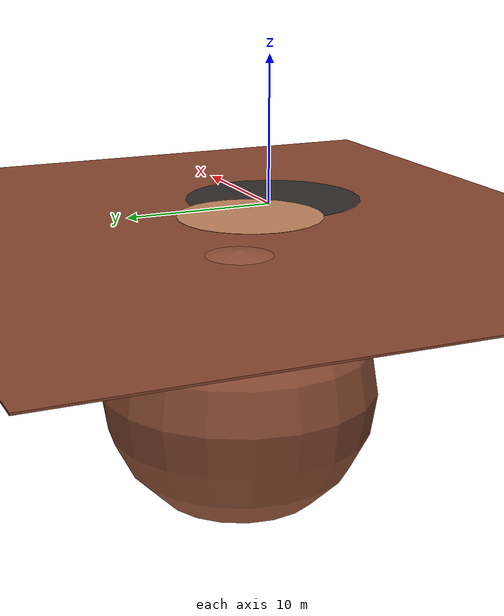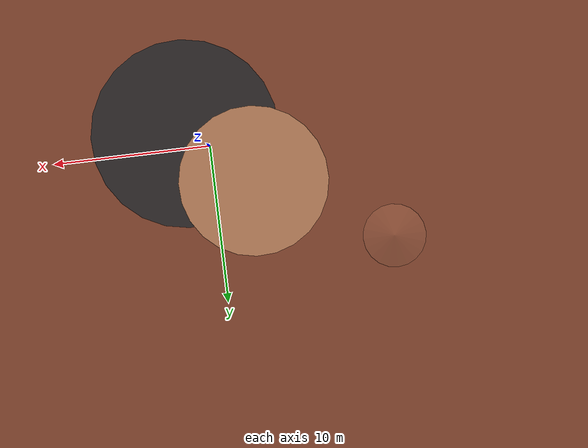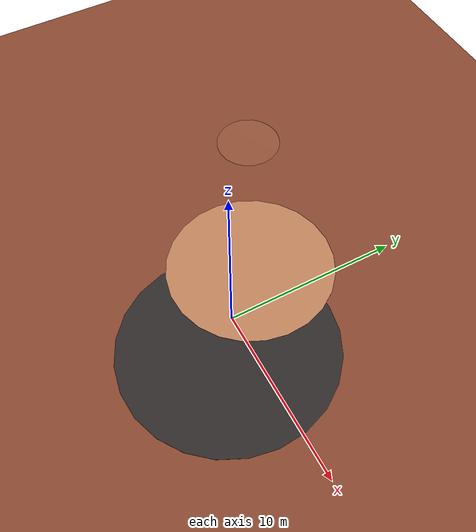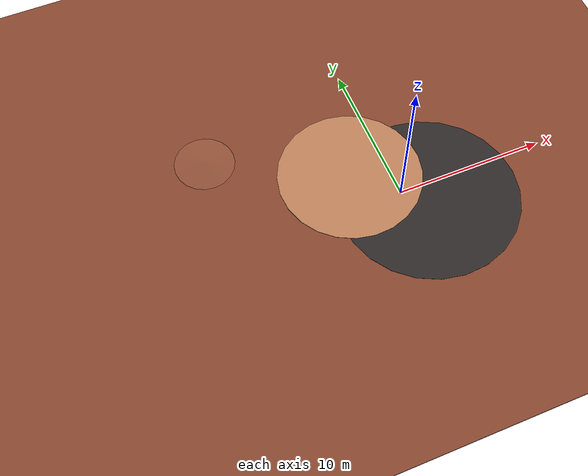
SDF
<sdf version="1.6">

  <!-- Define the simulation world -->
  <world name="mars_world">

    <!-- Mars gravity (downward along Z-axis) -->
    <gravity>0 0 -3.72</gravity>

    <!-- Add default sun light source -->
    <include>
      <uri>model://sun</uri>
    </include>

    <!-- ================= SCENE SETTINGS ================= -->
    <scene>

      <!-- Ambient lighting (reddish Mars tone) -->
      <ambient>0.26 0.15 0.12 1</ambient>

      <!-- Background color -->
      <background>0.18 0.11 0.09 1</background>

      <!-- Enable shadows -->
      <shadows>true</shadows>

      <!-- Fog to simulate dust atmosphere -->
      <fog>
        <type>linear</type>
        <color>0.30 0.18 0.14 1</color>
        <start>6.0</start>
        <end>42.0</end>
        <density>0.01</density>
      </fog>

      <!-- Disable clouds -->
      <sky>
        <clouds>false</clouds>
      </sky>
    </scene>

    <!-- ================= PHYSICS ENGINE ================= -->
    <physics name="mars_physics" type="ode">

      <!-- Run simulation in real-time -->
      <real_time_factor>1.0</real_time_factor>

      <!-- Small step size for accuracy -->
      <max_step_size>0.001</max_step_size>

      <!-- Update frequency -->
      <real_time_update_rate>1000</real_time_update_rate>
    </physics>

    <!-- ================= BASE TERRAIN ================= -->
    <model name="mars_terrain_base">

      <!-- Static = does not move -->
      <static>true</static>

      <!-- Slightly below origin -->
      <pose>0 0 -0.08 0 0 0</pose>

      <link name="terrain_link">

        <!-- Collision shape (physics) -->
        <collision name="collision">
          <geometry>
            <box>
              <!-- 90m x 90m ground -->
              <size>90 90 0.12</size>
            </box>
          </geometry>

          <!-- Friction properties -->
          <surface>
            <friction>
              <ode>
                <mu>1.2</mu>
                <mu2>1.2</mu2>
              </ode>
            </friction>
          </surface>
        </collision>

        <!-- Visual appearance -->
        <visual name="visual">
          <geometry>
            <box>
              <size>90 90 0.12</size>
            </box>
          </geometry>

          <!-- Mars-like brown color -->
          <material>
            <ambient>0.34 0.18 0.12 1</ambient>
            <diffuse>0.52 0.27 0.18 1</diffuse>
          </material>
        </visual>

      </link>
    </model>

    <!-- ================= DUNE MOUNDS ================= -->

    <!-- Large spherical terrain bumps (hills) -->
    <model name="dune_mound_01">
      <static>true</static>
      <pose>-11 7 -7.9 0 0 0</pose>

      <link name="link">
        <!-- Sphere used to create curved hill -->
        <collision name="c">
          <geometry><sphere><radius>8.2</radius></sphere></geometry>
        </collision>

        <visual name="v">
          <geometry><sphere><radius>8.2</radius></sphere></geometry>
          <material><diffuse>0.56 0.31 0.21 1</diffuse></material>
        </visual>
      </link>
    </model>

    <!-- ================= LIGHTING ================= -->

    <!-- Main sunlight -->
    <light name="mars_key" type="directional">
      <cast_shadows>true</cast_shadows>

      <!-- Position and angle -->
      <pose>0 0 60 0.35 -0.1 0.0</pose>

      <!-- Color -->
      <diffuse>0.80 0.46 0.33 1</diffuse>

      <!-- Light direction -->
      <direction>-0.55 0.20 -0.82</direction>
    </light>

    <!-- Secondary soft light -->
    <light name="mars_fill" type="directional">
      <cast_shadows>false</cast_shadows>
      <diffuse>0.14 0.08 0.06 1</diffuse>
    </light>

    <!-- ================= TERRAIN PATCHES ================= -->

    <!-- Dark rocky region -->
    <model name="basalt_patch_01">
      <static>true</static>
      <pose>1.5 -1.0 -0.010 0 0 0.2</pose>

      <link name="link">
        <!-- Flat cylinder patch -->
        <collision name="c">
          <geometry><cylinder><radius>6.0</radius><length>0.02</length></cylinder></geometry>
        </collision>

        <!-- Dark color -->
        <visual name="v">
          <geometry><cylinder><radius>6.0</radius><length>0.02</length></cylinder></geometry>
          <material><diffuse>0.18 0.16 0.16 1</diffuse></material>
        </visual>
      </link>
    </model>

    <!-- Light dusty terrain -->
    <model name="dust_patch_01">
      <static>true</static>
      <pose>-2.5 2.5 -0.009 0 0 0.45</pose>

      <link name="link">
        <collision name="c">
          <geometry><cylinder><radius>4.8</radius><length>0.02</length></cylinder></geometry>
        </collision>

        <visual name="v">
          <geometry><cylinder><radius>4.8</radius><length>0.02</length></cylinder></geometry>
          <material><diffuse>0.73 0.50 0.35 1</diffuse></material>
        </visual>
      </link>
    </model>

    <!-- ================= ROCK CLUSTERS (OBSTACLES) ================= -->

    <!-- Group of rocks -->
    <model name="near_rock_cluster_front">
      <static>true</static>
      <pose>1.9 1.0 0 0 0 0.35</pose>

      <link name="link">

        <!-- Multiple shapes → irregular rock -->
        <collision name="c1">
          <geometry><sphere><radius>0.32</radius></sphere></geometry>
        </collision>

        <collision name="c2">
          <geometry><sphere><radius>0.28</radius></sphere></geometry>
        </collision>

        <collision name="c3">
          <geometry><cylinder><radius>0.18</radius></cylinder></geometry>
        </collision>

      </link>
    </model>

    <!-- ================= FAR TERRAIN ================= -->

    <!-- Large patches far away for realism -->
    <model name="basalt_patch_far_01">
      <static>true</static>
      <pose>22 -18 -0.011 0 0 0.2</pose>
    </model>

    <!-- ================= PERIMETER ROCKS ================= -->

    <!-- Boundary obstacles -->
    <model name="perimeter_rock_01">
      <static>true</static>
      <pose>-30 10 0.18 0 0 0</pose>
    </model>

  </world>
</sdf>
